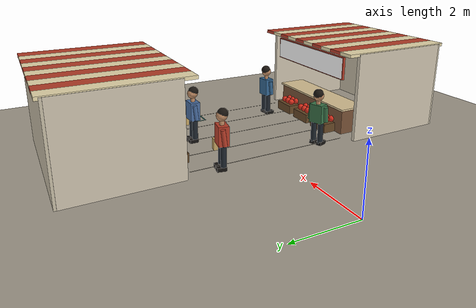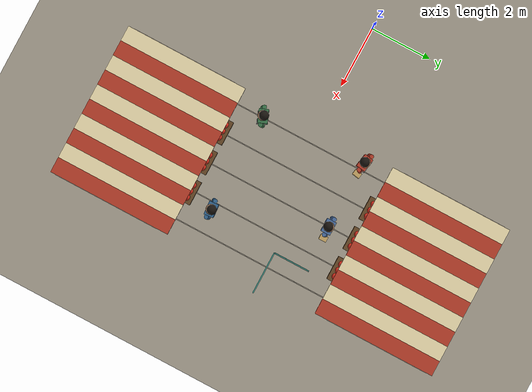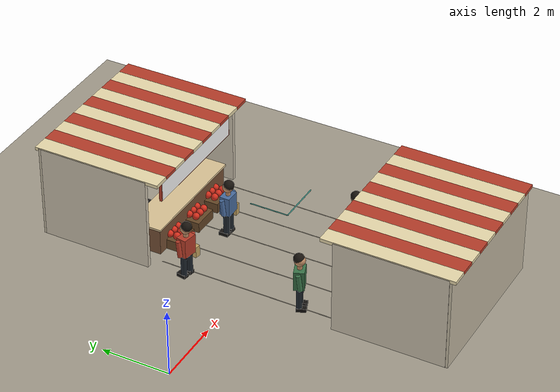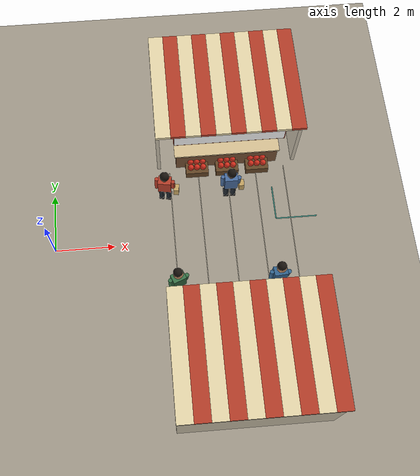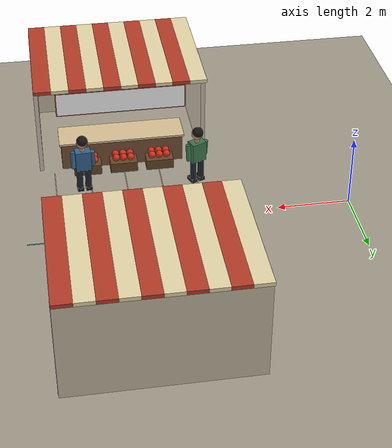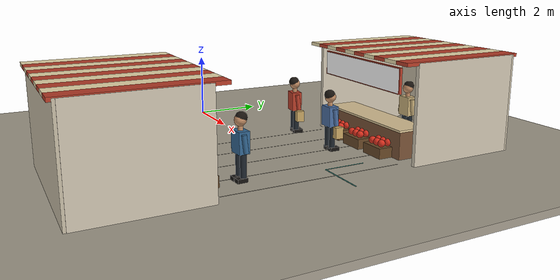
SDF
<sdf version="1.10">
 <world name="swan_market">
  <model name="ground">
   <static>true</static>
   <pose>15 0 -0.1 0 0 0</pose>
   <link name="body">
    <collision name="box_collision"><geometry><box><size>46 24 0.2</size></box></geometry></collision>
    <visual name="box_visual">
     <geometry><box><size>46 24 0.2</size></box></geometry>
     <material><ambient>0.64 0.61 0.55 1</ambient><diffuse>0.64 0.61 0.55 1</diffuse></material>
    </visual>
   </link>
  </model>
  <model name="paving_joint_4">
   <static>true</static>
   <pose>4 0 0.0045 0 0 0</pose>
   <link name="body">
    <visual name="box_visual">
     <geometry><box><size>0.025 5.2 0.001</size></box></geometry>
     <material><ambient>0.67 0.64 0.57 1</ambient><diffuse>0.67 0.64 0.57 1</diffuse></material>
    </visual>
   </link>
  </model>
  <model name="paving_joint_5">
   <static>true</static>
   <pose>5 0 0.0045 0 0 0</pose>
   <link name="body">
    <visual name="box_visual">
     <geometry><box><size>0.025 5.2 0.001</size></box></geometry>
     <material><ambient>0.67 0.64 0.57 1</ambient><diffuse>0.67 0.64 0.57 1</diffuse></material>
    </visual>
   </link>
  </model>
  <model name="paving_joint_6">
   <static>true</static>
   <pose>6 0 0.0045 0 0 0</pose>
   <link name="body">
    <visual name="box_visual">
     <geometry><box><size>0.025 5.2 0.001</size></box></geometry>
     <material><ambient>0.67 0.64 0.57 1</ambient><diffuse>0.67 0.64 0.57 1</diffuse></material>
    </visual>
   </link>
  </model>
  <model name="paving_joint_7">
   <static>true</static>
   <pose>7 0 0.0045 0 0 0</pose>
   <link name="body">
    <visual name="box_visual">
     <geometry><box><size>0.025 5.2 0.001</size></box></geometry>
     <material><ambient>0.67 0.64 0.57 1</ambient><diffuse>0.67 0.64 0.57 1</diffuse></material>
    </visual>
   </link>
  </model>
  <model name="paving_joint_8">
   <static>true</static>
   <pose>8 0 0.0045 0 0 0</pose>
   <link name="body">
    <visual name="box_visual">
     <geometry><box><size>0.025 5.2 0.001</size></box></geometry>
     <material><ambient>0.67 0.64 0.57 1</ambient><diffuse>0.67 0.64 0.57 1</diffuse></material>
    </visual>
   </link>
  </model>
  <model name="stall_00">
   <static>true</static>
   <pose>6 4.45 0 0 0 0</pose>
   <link name="body">
    <collision name="rear_collision">
     <pose>0 1.65 1.4 0 0 0</pose>
     <geometry><box><size>4.8 0.15 2.8</size></box></geometry>
    </collision>
    <visual name="rear_visual">
     <pose>0 1.65 1.4 0 0 0</pose>
     <geometry><box><size>4.8 0.15 2.8</size></box></geometry>
     <material><ambient>0.78 0.74 0.65 1</ambient><diffuse>0.78 0.74 0.65 1</diffuse></material>
    </visual>
    <collision name="side_-2.35_collision">
     <pose>-2.35 0 1.4 0 0 0</pose>
     <geometry><box><size>0.12 3.3 2.8</size></box></geometry>
    </collision>
    <visual name="side_-2.35_visual">
     <pose>-2.35 0 1.4 0 0 0</pose>
     <geometry><box><size>0.12 3.3 2.8</size></box></geometry>
     <material><ambient>0.81 0.77 0.69 1</ambient><diffuse>0.81 0.77 0.69 1</diffuse></material>
    </visual>
    <collision name="side_2.35_collision">
     <pose>2.35 0 1.4 0 0 0</pose>
     <geometry><box><size>0.12 3.3 2.8</size></box></geometry>
    </collision>
    <visual name="side_2.35_visual">
     <pose>2.35 0 1.4 0 0 0</pose>
     <geometry><box><size>0.12 3.3 2.8</size></box></geometry>
     <material><ambient>0.81 0.77 0.69 1</ambient><diffuse>0.81 0.77 0.69 1</diffuse></material>
    </visual>
    <collision name="counter_collision">
     <pose>0 -1.22 0.4 0 0 0</pose>
     <geometry><box><size>3.5 0.85 0.8</size></box></geometry>
    </collision>
    <visual name="counter_visual">
     <pose>0 -1.22 0.4 0 0 0</pose>
     <geometry><box><size>3.5 0.85 0.8</size></box></geometry>
     <material><ambient>0.47 0.32 0.21 1</ambient><diffuse>0.47 0.32 0.21 1</diffuse></material>
    </visual>
    <collision name="counter_top_collision">
     <pose>0 -1.22 0.83 0 0 0</pose>
     <geometry><box><size>3.6 0.95 0.06</size></box></geometry>
    </collision>
    <visual name="counter_top_visual">
     <pose>0 -1.22 0.83 0 0 0</pose>
     <geometry><box><size>3.6 0.95 0.06</size></box></geometry>
     <material><ambient>0.86 0.77 0.59 1</ambient><diffuse>0.86 0.77 0.59 1</diffuse></material>
    </visual>
    <collision name="awning_0_collision">
     <pose>-2.16 -0.1 2.78 0 0 0</pose>
     <geometry><box><size>0.48 3.85 0.1</size></box></geometry>
    </collision>
    <visual name="awning_0_visual">
     <pose>-2.16 -0.1 2.78 0 0 0</pose>
     <geometry><box><size>0.48 3.85 0.1</size></box></geometry>
     <material><ambient>0.92 0.86 0.68 1</ambient><diffuse>0.92 0.86 0.68 1</diffuse></material>
    </visual>
    <collision name="awning_1_collision">
     <pose>-1.68 -0.1 2.78 0 0 0</pose>
     <geometry><box><size>0.48 3.85 0.1</size></box></geometry>
    </collision>
    <visual name="awning_1_visual">
     <pose>-1.68 -0.1 2.78 0 0 0</pose>
     <geometry><box><size>0.48 3.85 0.1</size></box></geometry>
     <material><ambient>0.72 0.24 0.16 1</ambient><diffuse>0.72 0.24 0.16 1</diffuse></material>
    </visual>
    <collision name="awning_2_collision">
     <pose>-1.2 -0.1 2.78 0 0 0</pose>
     <geometry><box><size>0.48 3.85 0.1</size></box></geometry>
    </collision>
    <visual name="awning_2_visual">
     <pose>-1.2 -0.1 2.78 0 0 0</pose>
     <geometry><box><size>0.48 3.85 0.1</size></box></geometry>
     <material><ambient>0.92 0.86 0.68 1</ambient><diffuse>0.92 0.86 0.68 1</diffuse></material>
    </visual>
    <collision name="awning_3_collision">
     <pose>-0.72 -0.1 2.78 0 0 0</pose>
     <geometry><box><size>0.48 3.85 0.1</size></box></geometry>
    </collision>
    <visual name="awning_3_visual">
     <pose>-0.72 -0.1 2.78 0 0 0</pose>
     <geometry><box><size>0.48 3.85 0.1</size></box></geometry>
     <material><ambient>0.72 0.24 0.16 1</ambient><diffuse>0.72 0.24 0.16 1</diffuse></material>
    </visual>
    <collision name="awning_4_collision">
     <pose>-0.24 -0.1 2.78 0 0 0</pose>
     <geometry><box><size>0.48 3.85 0.1</size></box></geometry>
    </collision>
    <visual name="awning_4_visual">
     <pose>-0.24 -0.1 2.78 0 0 0</pose>
     <geometry><box><size>0.48 3.85 0.1</size></box></geometry>
     <material><ambient>0.92 0.86 0.68 1</ambient><diffuse>0.92 0.86 0.68 1</diffuse></material>
    </visual>
    <collision name="awning_5_collision">
     <pose>0.24 -0.1 2.78 0 0 0</pose>
     <geometry><box><size>0.48 3.85 0.1</size></box></geometry>
    </collision>
    <visual name="awning_5_visual">
     <pose>0.24 -0.1 2.78 0 0 0</pose>
     <geometry><box><size>0.48 3.85 0.1</size></box></geometry>
     <material><ambient>0.72 0.24 0.16 1</ambient><diffuse>0.72 0.24 0.16 1</diffuse></material>
    </visual>
    <collision name="awning_6_collision">
     <pose>0.72 -0.1 2.78 0 0 0</pose>
     <geometry><box><size>0.48 3.85 0.1</size></box></geometry>
    </collision>
    <visual name="awning_6_visual">
     <pose>0.72 -0.1 2.78 0 0 0</pose>
     <geometry><box><size>0.48 3.85 0.1</size></box></geometry>
     <material><ambient>0.92 0.86 0.68 1</ambient><diffuse>0.92 0.86 0.68 1</diffuse></material>
    </visual>
    <collision name="awning_7_collision">
     <pose>1.2 -0.1 2.78 0 0 0</pose>
     <geometry><box><size>0.48 3.85 0.1</size></box></geometry>
    </collision>
    <visual name="awning_7_visual">
     <pose>1.2 -0.1 2.78 0 0 0</pose>
     <geometry><box><size>0.48 3.85 0.1</size></box></geometry>
     <material><ambient>0.72 0.24 0.16 1</ambient><diffuse>0.72 0.24 0.16 1</diffuse></material>
    </visual>
    <collision name="awning_8_collision">
     <pose>1.68 -0.1 2.78 0 0 0</pose>
     <geometry><box><size>0.48 3.85 0.1</size></box></geometry>
    </collision>
    <visual name="awning_8_visual">
     <pose>1.68 -0.1 2.78 0 0 0</pose>
     <geometry><box><size>0.48 3.85 0.1</size></box></geometry>
     <material><ambient>0.92 0.86 0.68 1</ambient><diffuse>0.92 0.86 0.68 1</diffuse></material>
    </visual>
    <collision name="awning_9_collision">
     <pose>2.16 -0.1 2.78 0 0 0</pose>
     <geometry><box><size>0.48 3.85 0.1</size></box></geometry>
    </collision>
    <visual name="awning_9_visual">
     <pose>2.16 -0.1 2.78 0 0 0</pose>
     <geometry><box><size>0.48 3.85 0.1</size></box></geometry>
     <material><ambient>0.72 0.24 0.16 1</ambient><diffuse>0.72 0.24 0.16 1</diffuse></material>
    </visual>
    <collision name="crate_-1_collision">
     <pose>-1.04 -1.77 0.15 0 0 0</pose>
     <geometry><box><size>0.78 0.6 0.3</size></box></geometry>
    </collision>
    <visual name="crate_-1_visual">
     <pose>-1.04 -1.77 0.15 0 0 0</pose>
     <geometry><box><size>0.78 0.6 0.3</size></box></geometry>
     <material><ambient>0.4 0.28 0.15 1</ambient><diffuse>0.4 0.28 0.15 1</diffuse></material>
    </visual>
    <visual name="produce_-1_0_visual">
     <pose>-1.25 -1.88 0.39 0 0 0</pose>
     <geometry><sphere><radius>0.105</radius></sphere></geometry>
     <material><ambient>0.84 0.18 0.11 1</ambient><diffuse>0.84 0.18 0.11 1</diffuse></material>
    </visual>
    <visual name="produce_-1_1_visual">
     <pose>-1.04 -1.88 0.39 0 0 0</pose>
     <geometry><sphere><radius>0.105</radius></sphere></geometry>
     <material><ambient>0.84 0.18 0.11 1</ambient><diffuse>0.84 0.18 0.11 1</diffuse></material>
    </visual>
    <visual name="produce_-1_2_visual">
     <pose>-0.83 -1.88 0.39 0 0 0</pose>
     <geometry><sphere><radius>0.105</radius></sphere></geometry>
     <material><ambient>0.84 0.18 0.11 1</ambient><diffuse>0.84 0.18 0.11 1</diffuse></material>
    </visual>
    <visual name="produce_-1_3_visual">
     <pose>-1.25 -1.66 0.39 0 0 0</pose>
     <geometry><sphere><radius>0.105</radius></sphere></geometry>
     <material><ambient>0.84 0.18 0.11 1</ambient><diffuse>0.84 0.18 0.11 1</diffuse></material>
    </visual>
    <visual name="produce_-1_4_visual">
     <pose>-1.04 -1.66 0.39 0 0 0</pose>
     <geometry><sphere><radius>0.105</radius></sphere></geometry>
     <material><ambient>0.84 0.18 0.11 1</ambient><diffuse>0.84 0.18 0.11 1</diffuse></material>
    </visual>
    <visual name="produce_-1_5_visual">
     <pose>-0.83 -1.66 0.39 0 0 0</pose>
     <geometry><sphere><radius>0.105</radius></sphere></geometry>
     <material><ambient>0.84 0.18 0.11 1</ambient><diffuse>0.84 0.18 0.11 1</diffuse></material>
    </visual>
    <collision name="crate_0_collision">
     <pose>0 -1.77 0.15 0 0 0</pose>
     <geometry><box><size>0.78 0.6 0.3</size></box></geometry>
    </collision>
    <visual name="crate_0_visual">
     <pose>0 -1.77 0.15 0 0 0</pose>
     <geometry><box><size>0.78 0.6 0.3</size></box></geometry>
     <material><ambient>0.4 0.28 0.15 1</ambient><diffuse>0.4 0.28 0.15 1</diffuse></material>
    </visual>
    <visual name="produce_0_0_visual">
     <pose>-0.21 -1.88 0.39 0 0 0</pose>
     <geometry><sphere><radius>0.105</radius></sphere></geometry>
     <material><ambient>0.84 0.18 0.11 1</ambient><diffuse>0.84 0.18 0.11 1</diffuse></material>
    </visual>
    <visual name="produce_0_1_visual">
     <pose>0 -1.88 0.39 0 0 0</pose>
     <geometry><sphere><radius>0.105</radius></sphere></geometry>
     <material><ambient>0.84 0.18 0.11 1</ambient><diffuse>0.84 0.18 0.11 1</diffuse></material>
    </visual>
    <visual name="produce_0_2_visual">
     <pose>0.21 -1.88 0.39 0 0 0</pose>
     <geometry><sphere><radius>0.105</radius></sphere></geometry>
     <material><ambient>0.84 0.18 0.11 1</ambient><diffuse>0.84 0.18 0.11 1</diffuse></material>
    </visual>
    <visual name="produce_0_3_visual">
     <pose>-0.21 -1.66 0.39 0 0 0</pose>
     <geometry><sphere><radius>0.105</radius></sphere></geometry>
     <material><ambient>0.84 0.18 0.11 1</ambient><diffuse>0.84 0.18 0.11 1</diffuse></material>
    </visual>
    <visual name="produce_0_4_visual">
     <pose>0 -1.66 0.39 0 0 0</pose>
     <geometry><sphere><radius>0.105</radius></sphere></geometry>
     <material><ambient>0.84 0.18 0.11 1</ambient><diffuse>0.84 0.18 0.11 1</diffuse></material>
    </visual>
    <visual name="produce_0_5_visual">
     <pose>0.21 -1.66 0.39 0 0 0</pose>
     <geometry><sphere><radius>0.105</radius></sphere></geometry>
     <material><ambient>0.84 0.18 0.11 1</ambient><diffuse>0.84 0.18 0.11 1</diffuse></material>
    </visual>
    <collision name="crate_1_collision">
     <pose>1.04 -1.77 0.15 0 0 0</pose>
     <geometry><box><size>0.78 0.6 0.3</size></box></geometry>
    </collision>
    <visual name="crate_1_visual">
     <pose>1.04 -1.77 0.15 0 0 0</pose>
     <geometry><box><size>0.78 0.6 0.3</size></box></geometry>
     <material><ambient>0.4 0.28 0.15 1</ambient><diffuse>0.4 0.28 0.15 1</diffuse></material>
    </visual>
    <visual name="produce_1_0_visual">
     <pose>0.83 -1.88 0.39 0 0 0</pose>
     <geometry><sphere><radius>0.105</radius></sphere></geometry>
     <material><ambient>0.84 0.18 0.11 1</ambient><diffuse>0.84 0.18 0.11 1</diffuse></material>
    </visual>
    <visual name="produce_1_1_visual">
     <pose>1.04 -1.88 0.39 0 0 0</pose>
     <geometry><sphere><radius>0.105</radius></sphere></geometry>
     <material><ambient>0.84 0.18 0.11 1</ambient><diffuse>0.84 0.18 0.11 1</diffuse></material>
    </visual>
    <visual name="produce_1_2_visual">
     <pose>1.25 -1.88 0.39 0 0 0</pose>
     <geometry><sphere><radius>0.105</radius></sphere></geometry>
     <material><ambient>0.84 0.18 0.11 1</ambient><diffuse>0.84 0.18 0.11 1</diffuse></material>
    </visual>
    <visual name="produce_1_3_visual">
     <pose>0.83 -1.66 0.39 0 0 0</pose>
     <geometry><sphere><radius>0.105</radius></sphere></geometry>
     <material><ambient>0.84 0.18 0.11 1</ambient><diffuse>0.84 0.18 0.11 1</diffuse></material>
    </visual>
    <visual name="produce_1_4_visual">
     <pose>1.04 -1.66 0.39 0 0 0</pose>
     <geometry><sphere><radius>0.105</radius></sphere></geometry>
     <material><ambient>0.84 0.18 0.11 1</ambient><diffuse>0.84 0.18 0.11 1</diffuse></material>
    </visual>
    <visual name="produce_1_5_visual">
     <pose>1.25 -1.66 0.39 0 0 0</pose>
     <geometry><sphere><radius>0.105</radius></sphere></geometry>
     <material><ambient>0.84 0.18 0.11 1</ambient><diffuse>0.84 0.18 0.11 1</diffuse></material>
    </visual>
   </link>
  </model>
  <model name="signboard_0">
   <static>true</static>
   <pose>6 2.69 2.24 0 0 0</pose>
   <link name="body">
    <collision name="box_collision"><geometry><box><size>3.65 0.08 0.72</size></box></geometry></collision>
    <visual name="box_visual">
     <geometry><box><size>3.65 0.08 0.72</size></box></geometry>
     <material><ambient>0.72 0.24 0.16 1</ambient><diffuse>0.72 0.24 0.16 1</diffuse></material>
    </visual>
   </link>
  </model>
  <model name="sign_shop_0">
   <static>true</static>
   <pose>6 2.642 2.24 0 0 0</pose>
   <link name="body">
    <visual name="lettering">
     <geometry>
      <mesh><uri>model://swan_market_assets/meshes/shop_0.dae</uri><scale>3.6 1 0.675</scale></mesh>
     </geometry>
     <material>
      <ambient>1 1 1 1</ambient>
      <diffuse>1 1 1 1</diffuse>
      <emissive>0 0 0 1</emissive>
      <pbr>
       <metal>
        <albedo_map>model://swan_market_assets/materials/textures/shop_0.png</albedo_map>
        <metalness>0</metalness>
        <roughness>1</roughness>
       </metal>
      </pbr>
     </material>
    </visual>
   </link>
  </model>
  <model name="stall_04">
   <static>true</static>
   <pose>6 -4.45 0 0 0 0</pose>
   <link name="body">
    <collision name="rear_collision">
     <pose>0 -1.65 1.4 0 0 0</pose>
     <geometry><box><size>4.8 0.15 2.8</size></box></geometry>
    </collision>
    <visual name="rear_visual">
     <pose>0 -1.65 1.4 0 0 0</pose>
     <geometry><box><size>4.8 0.15 2.8</size></box></geometry>
     <material><ambient>0.78 0.74 0.65 1</ambient><diffuse>0.78 0.74 0.65 1</diffuse></material>
    </visual>
    <collision name="side_-2.35_collision">
     <pose>-2.35 0 1.4 0 0 0</pose>
     <geometry><box><size>0.12 3.3 2.8</size></box></geometry>
    </collision>
    <visual name="side_-2.35_visual">
     <pose>-2.35 0 1.4 0 0 0</pose>
     <geometry><box><size>0.12 3.3 2.8</size></box></geometry>
     <material><ambient>0.81 0.77 0.69 1</ambient><diffuse>0.81 0.77 0.69 1</diffuse></material>
    </visual>
    <collision name="side_2.35_collision">
     <pose>2.35 0 1.4 0 0 0</pose>
     <geometry><box><size>0.12 3.3 2.8</size></box></geometry>
    </collision>
    <visual name="side_2.35_visual">
     <pose>2.35 0 1.4 0 0 0</pose>
     <geometry><box><size>0.12 3.3 2.8</size></box></geometry>
     <material><ambient>0.81 0.77 0.69 1</ambient><diffuse>0.81 0.77 0.69 1</diffuse></material>
    </visual>
    <collision name="counter_collision">
     <pose>0 1.22 0.4 0 0 0</pose>
     <geometry><box><size>3.5 0.85 0.8</size></box></geometry>
    </collision>
    <visual name="counter_visual">
     <pose>0 1.22 0.4 0 0 0</pose>
     <geometry><box><size>3.5 0.85 0.8</size></box></geometry>
     <material><ambient>0.47 0.32 0.21 1</ambient><diffuse>0.47 0.32 0.21 1</diffuse></material>
    </visual>
    <collision name="counter_top_collision">
     <pose>0 1.22 0.83 0 0 0</pose>
     <geometry><box><size>3.6 0.95 0.06</size></box></geometry>
    </collision>
    <visual name="counter_top_visual">
     <pose>0 1.22 0.83 0 0 0</pose>
     <geometry><box><size>3.6 0.95 0.06</size></box></geometry>
     <material><ambient>0.86 0.77 0.59 1</ambient><diffuse>0.86 0.77 0.59 1</diffuse></material>
    </visual>
    <collision name="awning_0_collision">
     <pose>-2.16 0.1 2.78 0 0 0</pose>
     <geometry><box><size>0.48 3.85 0.1</size></box></geometry>
    </collision>
    <visual name="awning_0_visual">
     <pose>-2.16 0.1 2.78 0 0 0</pose>
     <geometry><box><size>0.48 3.85 0.1</size></box></geometry>
     <material><ambient>0.92 0.86 0.68 1</ambient><diffuse>0.92 0.86 0.68 1</diffuse></material>
    </visual>
    <collision name="awning_1_collision">
     <pose>-1.68 0.1 2.78 0 0 0</pose>
     <geometry><box><size>0.48 3.85 0.1</size></box></geometry>
    </collision>
    <visual name="awning_1_visual">
     <pose>-1.68 0.1 2.78 0 0 0</pose>
     <geometry><box><size>0.48 3.85 0.1</size></box></geometry>
     <material><ambient>0.72 0.24 0.16 1</ambient><diffuse>0.72 0.24 0.16 1</diffuse></material>
    </visual>
    <collision name="awning_2_collision">
     <pose>-1.2 0.1 2.78 0 0 0</pose>
     <geometry><box><size>0.48 3.85 0.1</size></box></geometry>
    </collision>
    <visual name="awning_2_visual">
     <pose>-1.2 0.1 2.78 0 0 0</pose>
     <geometry><box><size>0.48 3.85 0.1</size></box></geometry>
     <material><ambient>0.92 0.86 0.68 1</ambient><diffuse>0.92 0.86 0.68 1</diffuse></material>
    </visual>
    <collision name="awning_3_collision">
     <pose>-0.72 0.1 2.78 0 0 0</pose>
     <geometry><box><size>0.48 3.85 0.1</size></box></geometry>
    </collision>
    <visual name="awning_3_visual">
     <pose>-0.72 0.1 2.78 0 0 0</pose>
     <geometry><box><size>0.48 3.85 0.1</size></box></geometry>
     <material><ambient>0.72 0.24 0.16 1</ambient><diffuse>0.72 0.24 0.16 1</diffuse></material>
    </visual>
    <collision name="awning_4_collision">
     <pose>-0.24 0.1 2.78 0 0 0</pose>
     <geometry><box><size>0.48 3.85 0.1</size></box></geometry>
    </collision>
    <visual name="awning_4_visual">
     <pose>-0.24 0.1 2.78 0 0 0</pose>
     <geometry><box><size>0.48 3.85 0.1</size></box></geometry>
     <material><ambient>0.92 0.86 0.68 1</ambient><diffuse>0.92 0.86 0.68 1</diffuse></material>
    </visual>
    <collision name="awning_5_collision">
     <pose>0.24 0.1 2.78 0 0 0</pose>
     <geometry><box><size>0.48 3.85 0.1</size></box></geometry>
    </collision>
    <visual name="awning_5_visual">
     <pose>0.24 0.1 2.78 0 0 0</pose>
     <geometry><box><size>0.48 3.85 0.1</size></box></geometry>
     <material><ambient>0.72 0.24 0.16 1</ambient><diffuse>0.72 0.24 0.16 1</diffuse></material>
    </visual>
    <collision name="awning_6_collision">
     <pose>0.72 0.1 2.78 0 0 0</pose>
     <geometry><box><size>0.48 3.85 0.1</size></box></geometry>
    </collision>
    <visual name="awning_6_visual">
     <pose>0.72 0.1 2.78 0 0 0</pose>
     <geometry><box><size>0.48 3.85 0.1</size></box></geometry>
     <material><ambient>0.92 0.86 0.68 1</ambient><diffuse>0.92 0.86 0.68 1</diffuse></material>
    </visual>
    <collision name="awning_7_collision">
     <pose>1.2 0.1 2.78 0 0 0</pose>
     <geometry><box><size>0.48 3.85 0.1</size></box></geometry>
    </collision>
    <visual name="awning_7_visual">
     <pose>1.2 0.1 2.78 0 0 0</pose>
     <geometry><box><size>0.48 3.85 0.1</size></box></geometry>
     <material><ambient>0.72 0.24 0.16 1</ambient><diffuse>0.72 0.24 0.16 1</diffuse></material>
    </visual>
    <collision name="awning_8_collision">
     <pose>1.68 0.1 2.78 0 0 0</pose>
     <geometry><box><size>0.48 3.85 0.1</size></box></geometry>
    </collision>
    <visual name="awning_8_visual">
     <pose>1.68 0.1 2.78 0 0 0</pose>
     <geometry><box><size>0.48 3.85 0.1</size></box></geometry>
     <material><ambient>0.92 0.86 0.68 1</ambient><diffuse>0.92 0.86 0.68 1</diffuse></material>
    </visual>
    <collision name="awning_9_collision">
     <pose>2.16 0.1 2.78 0 0 0</pose>
     <geometry><box><size>0.48 3.85 0.1</size></box></geometry>
    </collision>
    <visual name="awning_9_visual">
     <pose>2.16 0.1 2.78 0 0 0</pose>
     <geometry><box><size>0.48 3.85 0.1</size></box></geometry>
     <material><ambient>0.72 0.24 0.16 1</ambient><diffuse>0.72 0.24 0.16 1</diffuse></material>
    </visual>
    <collision name="crate_-1_collision">
     <pose>-1.04 1.77 0.15 0 0 0</pose>
     <geometry><box><size>0.78 0.6 0.3</size></box></geometry>
    </collision>
    <visual name="crate_-1_visual">
     <pose>-1.04 1.77 0.15 0 0 0</pose>
     <geometry><box><size>0.78 0.6 0.3</size></box></geometry>
     <material><ambient>0.4 0.28 0.15 1</ambient><diffuse>0.4 0.28 0.15 1</diffuse></material>
    </visual>
    <visual name="produce_-1_0_visual">
     <pose>-1.25 1.66 0.39 0 0 0</pose>
     <geometry><sphere><radius>0.105</radius></sphere></geometry>
     <material><ambient>0.84 0.18 0.11 1</ambient><diffuse>0.84 0.18 0.11 1</diffuse></material>
    </visual>
    <visual name="produce_-1_1_visual">
     <pose>-1.04 1.66 0.39 0 0 0</pose>
     <geometry><sphere><radius>0.105</radius></sphere></geometry>
     <material><ambient>0.84 0.18 0.11 1</ambient><diffuse>0.84 0.18 0.11 1</diffuse></material>
    </visual>
    <visual name="produce_-1_2_visual">
     <pose>-0.83 1.66 0.39 0 0 0</pose>
     <geometry><sphere><radius>0.105</radius></sphere></geometry>
     <material><ambient>0.84 0.18 0.11 1</ambient><diffuse>0.84 0.18 0.11 1</diffuse></material>
    </visual>
    <visual name="produce_-1_3_visual">
     <pose>-1.25 1.88 0.39 0 0 0</pose>
     <geometry><sphere><radius>0.105</radius></sphere></geometry>
     <material><ambient>0.84 0.18 0.11 1</ambient><diffuse>0.84 0.18 0.11 1</diffuse></material>
    </visual>
    <visual name="produce_-1_4_visual">
     <pose>-1.04 1.88 0.39 0 0 0</pose>
     <geometry><sphere><radius>0.105</radius></sphere></geometry>
     <material><ambient>0.84 0.18 0.11 1</ambient><diffuse>0.84 0.18 0.11 1</diffuse></material>
    </visual>
    <visual name="produce_-1_5_visual">
     <pose>-0.83 1.88 0.39 0 0 0</pose>
     <geometry><sphere><radius>0.105</radius></sphere></geometry>
     <material><ambient>0.84 0.18 0.11 1</ambient><diffuse>0.84 0.18 0.11 1</diffuse></material>
    </visual>
    <collision name="crate_0_collision">
     <pose>0 1.77 0.15 0 0 0</pose>
     <geometry><box><size>0.78 0.6 0.3</size></box></geometry>
    </collision>
    <visual name="crate_0_visual">
     <pose>0 1.77 0.15 0 0 0</pose>
     <geometry><box><size>0.78 0.6 0.3</size></box></geometry>
     <material><ambient>0.4 0.28 0.15 1</ambient><diffuse>0.4 0.28 0.15 1</diffuse></material>
    </visual>
    <visual name="produce_0_0_visual">
     <pose>-0.21 1.66 0.39 0 0 0</pose>
     <geometry><sphere><radius>0.105</radius></sphere></geometry>
     <material><ambient>0.84 0.18 0.11 1</ambient><diffuse>0.84 0.18 0.11 1</diffuse></material>
    </visual>
    <visual name="produce_0_1_visual">
     <pose>0 1.66 0.39 0 0 0</pose>
     <geometry><sphere><radius>0.105</radius></sphere></geometry>
     <material><ambient>0.84 0.18 0.11 1</ambient><diffuse>0.84 0.18 0.11 1</diffuse></material>
    </visual>
    <visual name="produce_0_2_visual">
     <pose>0.21 1.66 0.39 0 0 0</pose>
     <geometry><sphere><radius>0.105</radius></sphere></geometry>
     <material><ambient>0.84 0.18 0.11 1</ambient><diffuse>0.84 0.18 0.11 1</diffuse></material>
    </visual>
    <visual name="produce_0_3_visual">
     <pose>-0.21 1.88 0.39 0 0 0</pose>
     <geometry><sphere><radius>0.105</radius></sphere></geometry>
     <material><ambient>0.84 0.18 0.11 1</ambient><diffuse>0.84 0.18 0.11 1</diffuse></material>
    </visual>
    <visual name="produce_0_4_visual">
     <pose>0 1.88 0.39 0 0 0</pose>
     <geometry><sphere><radius>0.105</radius></sphere></geometry>
     <material><ambient>0.84 0.18 0.11 1</ambient><diffuse>0.84 0.18 0.11 1</diffuse></material>
    </visual>
    <visual name="produce_0_5_visual">
     <pose>0.21 1.88 0.39 0 0 0</pose>
     <geometry><sphere><radius>0.105</radius></sphere></geometry>
     <material><ambient>0.84 0.18 0.11 1</ambient><diffuse>0.84 0.18 0.11 1</diffuse></material>
    </visual>
    <collision name="crate_1_collision">
     <pose>1.04 1.77 0.15 0 0 0</pose>
     <geometry><box><size>0.78 0.6 0.3</size></box></geometry>
    </collision>
    <visual name="crate_1_visual">
     <pose>1.04 1.77 0.15 0 0 0</pose>
     <geometry><box><size>0.78 0.6 0.3</size></box></geometry>
     <material><ambient>0.4 0.28 0.15 1</ambient><diffuse>0.4 0.28 0.15 1</diffuse></material>
    </visual>
    <visual name="produce_1_0_visual">
     <pose>0.83 1.66 0.39 0 0 0</pose>
     <geometry><sphere><radius>0.105</radius></sphere></geometry>
     <material><ambient>0.84 0.18 0.11 1</ambient><diffuse>0.84 0.18 0.11 1</diffuse></material>
    </visual>
    <visual name="produce_1_1_visual">
     <pose>1.04 1.66 0.39 0 0 0</pose>
     <geometry><sphere><radius>0.105</radius></sphere></geometry>
     <material><ambient>0.84 0.18 0.11 1</ambient><diffuse>0.84 0.18 0.11 1</diffuse></material>
    </visual>
    <visual name="produce_1_2_visual">
     <pose>1.25 1.66 0.39 0 0 0</pose>
     <geometry><sphere><radius>0.105</radius></sphere></geometry>
     <material><ambient>0.84 0.18 0.11 1</ambient><diffuse>0.84 0.18 0.11 1</diffuse></material>
    </visual>
    <visual name="produce_1_3_visual">
     <pose>0.83 1.88 0.39 0 0 0</pose>
     <geometry><sphere><radius>0.105</radius></sphere></geometry>
     <material><ambient>0.84 0.18 0.11 1</ambient><diffuse>0.84 0.18 0.11 1</diffuse></material>
    </visual>
    <visual name="produce_1_4_visual">
     <pose>1.04 1.88 0.39 0 0 0</pose>
     <geometry><sphere><radius>0.105</radius></sphere></geometry>
     <material><ambient>0.84 0.18 0.11 1</ambient><diffuse>0.84 0.18 0.11 1</diffuse></material>
    </visual>
    <visual name="produce_1_5_visual">
     <pose>1.25 1.88 0.39 0 0 0</pose>
     <geometry><sphere><radius>0.105</radius></sphere></geometry>
     <material><ambient>0.84 0.18 0.11 1</ambient><diffuse>0.84 0.18 0.11 1</diffuse></material>
    </visual>
   </link>
  </model>
  <model name="signboard_4">
   <static>true</static>
   <pose>6 -2.69 2.24 0 0 0</pose>
   <link name="body">
    <collision name="box_collision"><geometry><box><size>3.65 0.08 0.72</size></box></geometry></collision>
    <visual name="box_visual">
     <geometry><box><size>3.65 0.08 0.72</size></box></geometry>
     <material><ambient>0.72 0.24 0.16 1</ambient><diffuse>0.72 0.24 0.16 1</diffuse></material>
    </visual>
   </link>
  </model>
  <model name="sign_shop_4">
   <static>true</static>
   <pose>6 -2.642 2.24 0 0 3.1416</pose>
   <link name="body">
    <visual name="lettering">
     <geometry>
      <mesh><uri>model://swan_market_assets/meshes/shop_4.dae</uri><scale>3.6 1 0.675</scale></mesh>
     </geometry>
     <material>
      <ambient>1 1 1 1</ambient>
      <diffuse>1 1 1 1</diffuse>
      <emissive>0 0 0 1</emissive>
      <pbr>
       <metal>
        <albedo_map>model://swan_market_assets/materials/textures/shop_4.png</albedo_map>
        <metalness>0</metalness>
        <roughness>1</roughness>
       </metal>
      </pbr>
     </material>
    </visual>
   </link>
  </model>
  <model name="shopper_fruit">
   <static>true</static>
   <pose>6 1.65 0 0 0 1.5708</pose>
   <link name="body">
    <collision name="leg_-1_collision">
     <pose>0 -0.12 0.4 0 0 0</pose>
     <geometry><cylinder><radius>0.085</radius><length>0.68</length></cylinder></geometry>
    </collision>
    <visual name="leg_-1_visual">
     <pose>0 -0.12 0.4 0 0 0</pose>
     <geometry><cylinder><radius>0.085</radius><length>0.68</length></cylinder></geometry>
     <material><ambient>0.12 0.15 0.18 1</ambient><diffuse>0.12 0.15 0.18 1</diffuse></material>
    </visual>
    <collision name="shoe_-1_collision">
     <pose>0.06 -0.12 0.055 0 0 0</pose>
     <geometry><box><size>0.28 0.17 0.11</size></box></geometry>
    </collision>
    <visual name="shoe_-1_visual">
     <pose>0.06 -0.12 0.055 0 0 0</pose>
     <geometry><box><size>0.28 0.17 0.11</size></box></geometry>
     <material><ambient>0.08 0.07 0.06 1</ambient><diffuse>0.08 0.07 0.06 1</diffuse></material>
    </visual>
    <collision name="arm_-1_collision">
     <pose>0.02 -0.27 1.02 0 -0.12 0</pose>
     <geometry><cylinder><radius>0.068</radius><length>0.48</length></cylinder></geometry>
    </collision>
    <visual name="arm_-1_visual">
     <pose>0.02 -0.27 1.02 0 -0.12 0</pose>
     <geometry><cylinder><radius>0.068</radius><length>0.48</length></cylinder></geometry>
     <material><ambient>0.29 0.43 0.63 1</ambient><diffuse>0.29 0.43 0.63 1</diffuse></material>
    </visual>
    <collision name="leg_1_collision">
     <pose>0 0.12 0.4 0 0 0</pose>
     <geometry><cylinder><radius>0.085</radius><length>0.68</length></cylinder></geometry>
    </collision>
    <visual name="leg_1_visual">
     <pose>0 0.12 0.4 0 0 0</pose>
     <geometry><cylinder><radius>0.085</radius><length>0.68</length></cylinder></geometry>
     <material><ambient>0.12 0.15 0.18 1</ambient><diffuse>0.12 0.15 0.18 1</diffuse></material>
    </visual>
    <collision name="shoe_1_collision">
     <pose>0.06 0.12 0.055 0 0 0</pose>
     <geometry><box><size>0.28 0.17 0.11</size></box></geometry>
    </collision>
    <visual name="shoe_1_visual">
     <pose>0.06 0.12 0.055 0 0 0</pose>
     <geometry><box><size>0.28 0.17 0.11</size></box></geometry>
     <material><ambient>0.08 0.07 0.06 1</ambient><diffuse>0.08 0.07 0.06 1</diffuse></material>
    </visual>
    <collision name="arm_1_collision">
     <pose>0.02 0.27 1.02 0 0.12 0</pose>
     <geometry><cylinder><radius>0.068</radius><length>0.48</length></cylinder></geometry>
    </collision>
    <visual name="arm_1_visual">
     <pose>0.02 0.27 1.02 0 0.12 0</pose>
     <geometry><cylinder><radius>0.068</radius><length>0.48</length></cylinder></geometry>
     <material><ambient>0.29 0.43 0.63 1</ambient><diffuse>0.29 0.43 0.63 1</diffuse></material>
    </visual>
    <collision name="torso_collision">
     <pose>0 0 1.02 0 0 0</pose>
     <geometry><box><size>0.3 0.43 0.58</size></box></geometry>
    </collision>
    <visual name="torso_visual">
     <pose>0 0 1.02 0 0 0</pose>
     <geometry><box><size>0.3 0.43 0.58</size></box></geometry>
     <material><ambient>0.29 0.43 0.63 1</ambient><diffuse>0.29 0.43 0.63 1</diffuse></material>
    </visual>
    <visual name="neck_visual">
     <pose>0 0 1.37 0 0 0</pose>
     <geometry><cylinder><radius>0.07</radius><length>0.13</length></cylinder></geometry>
     <material><ambient>0.77 0.56 0.4 1</ambient><diffuse>0.77 0.56 0.4 1</diffuse></material>
    </visual>
    <collision name="head_collision">
     <pose>0 0 1.57 0 0 0</pose>
     <geometry><sphere><radius>0.16</radius></sphere></geometry>
    </collision>
    <visual name="head_visual">
     <pose>0 0 1.57 0 0 0</pose>
     <geometry><sphere><radius>0.16</radius></sphere></geometry>
     <material><ambient>0.77 0.56 0.4 1</ambient><diffuse>0.77 0.56 0.4 1</diffuse></material>
    </visual>
    <visual name="hair_visual">
     <pose>-0.025 0 1.63 0 0 0</pose>
     <geometry><sphere><radius>0.155</radius></sphere></geometry>
     <material><ambient>0.1 0.08 0.06 1</ambient><diffuse>0.1 0.08 0.06 1</diffuse></material>
    </visual>
    <collision name="shopping_bag_collision">
     <pose>0.04 -0.38 0.6 0 0 0</pose>
     <geometry><box><size>0.24 0.17 0.33</size></box></geometry>
    </collision>
    <visual name="shopping_bag_visual">
     <pose>0.04 -0.38 0.6 0 0 0</pose>
     <geometry><box><size>0.24 0.17 0.33</size></box></geometry>
     <material><ambient>0.78 0.65 0.39 1</ambient><diffuse>0.78 0.65 0.39 1</diffuse></material>
    </visual>
   </link>
  </model>
  <model name="vendor_0">
   <static>true</static>
   <pose>6 4.45 0 0 0 -1.5708</pose>
   <link name="body">
    <collision name="leg_-1_collision">
     <pose>0 -0.12 0.4 0 0 0</pose>
     <geometry><cylinder><radius>0.085</radius><length>0.68</length></cylinder></geometry>
    </collision>
    <visual name="leg_-1_visual">
     <pose>0 -0.12 0.4 0 0 0</pose>
     <geometry><cylinder><radius>0.085</radius><length>0.68</length></cylinder></geometry>
     <material><ambient>0.12 0.15 0.18 1</ambient><diffuse>0.12 0.15 0.18 1</diffuse></material>
    </visual>
    <collision name="shoe_-1_collision">
     <pose>0.06 -0.12 0.055 0 0 0</pose>
     <geometry><box><size>0.28 0.17 0.11</size></box></geometry>
    </collision>
    <visual name="shoe_-1_visual">
     <pose>0.06 -0.12 0.055 0 0 0</pose>
     <geometry><box><size>0.28 0.17 0.11</size></box></geometry>
     <material><ambient>0.08 0.07 0.06 1</ambient><diffuse>0.08 0.07 0.06 1</diffuse></material>
    </visual>
    <collision name="arm_-1_collision">
     <pose>0.02 -0.27 1.02 0 -0.12 0</pose>
     <geometry><cylinder><radius>0.068</radius><length>0.48</length></cylinder></geometry>
    </collision>
    <visual name="arm_-1_visual">
     <pose>0.02 -0.27 1.02 0 -0.12 0</pose>
     <geometry><cylinder><radius>0.068</radius><length>0.48</length></cylinder></geometry>
     <material><ambient>0.79 0.69 0.48 1</ambient><diffuse>0.79 0.69 0.48 1</diffuse></material>
    </visual>
    <collision name="leg_1_collision">
     <pose>0 0.12 0.4 0 0 0</pose>
     <geometry><cylinder><radius>0.085</radius><length>0.68</length></cylinder></geometry>
    </collision>
    <visual name="leg_1_visual">
     <pose>0 0.12 0.4 0 0 0</pose>
     <geometry><cylinder><radius>0.085</radius><length>0.68</length></cylinder></geometry>
     <material><ambient>0.12 0.15 0.18 1</ambient><diffuse>0.12 0.15 0.18 1</diffuse></material>
    </visual>
    <collision name="shoe_1_collision">
     <pose>0.06 0.12 0.055 0 0 0</pose>
     <geometry><box><size>0.28 0.17 0.11</size></box></geometry>
    </collision>
    <visual name="shoe_1_visual">
     <pose>0.06 0.12 0.055 0 0 0</pose>
     <geometry><box><size>0.28 0.17 0.11</size></box></geometry>
     <material><ambient>0.08 0.07 0.06 1</ambient><diffuse>0.08 0.07 0.06 1</diffuse></material>
    </visual>
    <collision name="arm_1_collision">
     <pose>0.02 0.27 1.02 0 0.12 0</pose>
     <geometry><cylinder><radius>0.068</radius><length>0.48</length></cylinder></geometry>
    </collision>
    <visual name="arm_1_visual">
     <pose>0.02 0.27 1.02 0 0.12 0</pose>
     <geometry><cylinder><radius>0.068</radius><length>0.48</length></cylinder></geometry>
     <material><ambient>0.79 0.69 0.48 1</ambient><diffuse>0.79 0.69 0.48 1</diffuse></material>
    </visual>
    <collision name="torso_collision">
     <pose>0 0 1.02 0 0 0</pose>
     <geometry><box><size>0.3 0.43 0.58</size></box></geometry>
    </collision>
    <visual name="torso_visual">
     <pose>0 0 1.02 0 0 0</pose>
     <geometry><box><size>0.3 0.43 0.58</size></box></geometry>
     <material><ambient>0.79 0.69 0.48 1</ambient><diffuse>0.79 0.69 0.48 1</diffuse></material>
    </visual>
    <visual name="neck_visual">
     <pose>0 0 1.37 0 0 0</pose>
     <geometry><cylinder><radius>0.07</radius><length>0.13</length></cylinder></geometry>
     <material><ambient>0.77 0.56 0.4 1</ambient><diffuse>0.77 0.56 0.4 1</diffuse></material>
    </visual>
    <collision name="head_collision">
     <pose>0 0 1.57 0 0 0</pose>
     <geometry><sphere><radius>0.16</radius></sphere></geometry>
    </collision>
    <visual name="head_visual">
     <pose>0 0 1.57 0 0 0</pose>
     <geometry><sphere><radius>0.16</radius></sphere></geometry>
     <material><ambient>0.77 0.56 0.4 1</ambient><diffuse>0.77 0.56 0.4 1</diffuse></material>
    </visual>
    <visual name="hair_visual">
     <pose>-0.025 0 1.63 0 0 0</pose>
     <geometry><sphere><radius>0.155</radius></sphere></geometry>
     <material><ambient>0.1 0.08 0.06 1</ambient><diffuse>0.1 0.08 0.06 1</diffuse></material>
    </visual>
   </link>
  </model>
  <model name="crowd_00">
   <static>true</static>
   <pose>3.8 1.7 0 0 0 1.4</pose>
   <link name="body">
    <collision name="leg_-1_collision">
     <pose>0 -0.12 0.4 0 0 0</pose>
     <geometry><cylinder><radius>0.085</radius><length>0.68</length></cylinder></geometry>
    </collision>
    <visual name="leg_-1_visual">
     <pose>0 -0.12 0.4 0 0 0</pose>
     <geometry><cylinder><radius>0.085</radius><length>0.68</length></cylinder></geometry>
     <material><ambient>0.12 0.15 0.18 1</ambient><diffuse>0.12 0.15 0.18 1</diffuse></material>
    </visual>
    <collision name="shoe_-1_collision">
     <pose>0.06 -0.12 0.055 0 0 0</pose>
     <geometry><box><size>0.28 0.17 0.11</size></box></geometry>
    </collision>
    <visual name="shoe_-1_visual">
     <pose>0.06 -0.12 0.055 0 0 0</pose>
     <geometry><box><size>0.28 0.17 0.11</size></box></geometry>
     <material><ambient>0.08 0.07 0.06 1</ambient><diffuse>0.08 0.07 0.06 1</diffuse></material>
    </visual>
    <collision name="arm_-1_collision">
     <pose>0.02 -0.27 1.02 0 -0.12 0</pose>
     <geometry><cylinder><radius>0.068</radius><length>0.48</length></cylinder></geometry>
    </collision>
    <visual name="arm_-1_visual">
     <pose>0.02 -0.27 1.02 0 -0.12 0</pose>
     <geometry><cylinder><radius>0.068</radius><length>0.48</length></cylinder></geometry>
     <material><ambient>0.72 0.24 0.16 1</ambient><diffuse>0.72 0.24 0.16 1</diffuse></material>
    </visual>
    <collision name="leg_1_collision">
     <pose>0 0.12 0.4 0 0 0</pose>
     <geometry><cylinder><radius>0.085</radius><length>0.68</length></cylinder></geometry>
    </collision>
    <visual name="leg_1_visual">
     <pose>0 0.12 0.4 0 0 0</pose>
     <geometry><cylinder><radius>0.085</radius><length>0.68</length></cylinder></geometry>
     <material><ambient>0.12 0.15 0.18 1</ambient><diffuse>0.12 0.15 0.18 1</diffuse></material>
    </visual>
    <collision name="shoe_1_collision">
     <pose>0.06 0.12 0.055 0 0 0</pose>
     <geometry><box><size>0.28 0.17 0.11</size></box></geometry>
    </collision>
    <visual name="shoe_1_visual">
     <pose>0.06 0.12 0.055 0 0 0</pose>
     <geometry><box><size>0.28 0.17 0.11</size></box></geometry>
     <material><ambient>0.08 0.07 0.06 1</ambient><diffuse>0.08 0.07 0.06 1</diffuse></material>
    </visual>
    <collision name="arm_1_collision">
     <pose>0.02 0.27 1.02 0 0.12 0</pose>
     <geometry><cylinder><radius>0.068</radius><length>0.48</length></cylinder></geometry>
    </collision>
    <visual name="arm_1_visual">
     <pose>0.02 0.27 1.02 0 0.12 0</pose>
     <geometry><cylinder><radius>0.068</radius><length>0.48</length></cylinder></geometry>
     <material><ambient>0.72 0.24 0.16 1</ambient><diffuse>0.72 0.24 0.16 1</diffuse></material>
    </visual>
    <collision name="torso_collision">
     <pose>0 0 1.02 0 0 0</pose>
     <geometry><box><size>0.3 0.43 0.58</size></box></geometry>
    </collision>
    <visual name="torso_visual">
     <pose>0 0 1.02 0 0 0</pose>
     <geometry><box><size>0.3 0.43 0.58</size></box></geometry>
     <material><ambient>0.72 0.24 0.16 1</ambient><diffuse>0.72 0.24 0.16 1</diffuse></material>
    </visual>
    <visual name="neck_visual">
     <pose>0 0 1.37 0 0 0</pose>
     <geometry><cylinder><radius>0.07</radius><length>0.13</length></cylinder></geometry>
     <material><ambient>0.77 0.56 0.4 1</ambient><diffuse>0.77 0.56 0.4 1</diffuse></material>
    </visual>
    <collision name="head_collision">
     <pose>0 0 1.57 0 0 0</pose>
     <geometry><sphere><radius>0.16</radius></sphere></geometry>
    </collision>
    <visual name="head_visual">
     <pose>0 0 1.57 0 0 0</pose>
     <geometry><sphere><radius>0.16</radius></sphere></geometry>
     <material><ambient>0.77 0.56 0.4 1</ambient><diffuse>0.77 0.56 0.4 1</diffuse></material>
    </visual>
    <visual name="hair_visual">
     <pose>-0.025 0 1.63 0 0 0</pose>
     <geometry><sphere><radius>0.155</radius></sphere></geometry>
     <material><ambient>0.1 0.08 0.06 1</ambient><diffuse>0.1 0.08 0.06 1</diffuse></material>
    </visual>
    <collision name="shopping_bag_collision">
     <pose>0.04 -0.38 0.6 0 0 0</pose>
     <geometry><box><size>0.24 0.17 0.33</size></box></geometry>
    </collision>
    <visual name="shopping_bag_visual">
     <pose>0.04 -0.38 0.6 0 0 0</pose>
     <geometry><box><size>0.24 0.17 0.33</size></box></geometry>
     <material><ambient>0.78 0.65 0.39 1</ambient><diffuse>0.78 0.65 0.39 1</diffuse></material>
    </visual>
   </link>
  </model>
  <model name="crowd_01">
   <static>true</static>
   <pose>4 -1.65 0 0 0 -1.2</pose>
   <link name="body">
    <collision name="leg_-1_collision">
     <pose>0 -0.12 0.4 0 0 0</pose>
     <geometry><cylinder><radius>0.085</radius><length>0.68</length></cylinder></geometry>
    </collision>
    <visual name="leg_-1_visual">
     <pose>0 -0.12 0.4 0 0 0</pose>
     <geometry><cylinder><radius>0.085</radius><length>0.68</length></cylinder></geometry>
     <material><ambient>0.12 0.15 0.18 1</ambient><diffuse>0.12 0.15 0.18 1</diffuse></material>
    </visual>
    <collision name="shoe_-1_collision">
     <pose>0.06 -0.12 0.055 0 0 0</pose>
     <geometry><box><size>0.28 0.17 0.11</size></box></geometry>
    </collision>
    <visual name="shoe_-1_visual">
     <pose>0.06 -0.12 0.055 0 0 0</pose>
     <geometry><box><size>0.28 0.17 0.11</size></box></geometry>
     <material><ambient>0.08 0.07 0.06 1</ambient><diffuse>0.08 0.07 0.06 1</diffuse></material>
    </visual>
    <collision name="arm_-1_collision">
     <pose>0.02 -0.27 1.02 0 -0.12 0</pose>
     <geometry><cylinder><radius>0.068</radius><length>0.48</length></cylinder></geometry>
    </collision>
    <visual name="arm_-1_visual">
     <pose>0.02 -0.27 1.02 0 -0.12 0</pose>
     <geometry><cylinder><radius>0.068</radius><length>0.48</length></cylinder></geometry>
     <material><ambient>0.23 0.46 0.29 1</ambient><diffuse>0.23 0.46 0.29 1</diffuse></material>
    </visual>
    <collision name="leg_1_collision">
     <pose>0 0.12 0.4 0 0 0</pose>
     <geometry><cylinder><radius>0.085</radius><length>0.68</length></cylinder></geometry>
    </collision>
    <visual name="leg_1_visual">
     <pose>0 0.12 0.4 0 0 0</pose>
     <geometry><cylinder><radius>0.085</radius><length>0.68</length></cylinder></geometry>
     <material><ambient>0.12 0.15 0.18 1</ambient><diffuse>0.12 0.15 0.18 1</diffuse></material>
    </visual>
    <collision name="shoe_1_collision">
     <pose>0.06 0.12 0.055 0 0 0</pose>
     <geometry><box><size>0.28 0.17 0.11</size></box></geometry>
    </collision>
    <visual name="shoe_1_visual">
     <pose>0.06 0.12 0.055 0 0 0</pose>
     <geometry><box><size>0.28 0.17 0.11</size></box></geometry>
     <material><ambient>0.08 0.07 0.06 1</ambient><diffuse>0.08 0.07 0.06 1</diffuse></material>
    </visual>
    <collision name="arm_1_collision">
     <pose>0.02 0.27 1.02 0 0.12 0</pose>
     <geometry><cylinder><radius>0.068</radius><length>0.48</length></cylinder></geometry>
    </collision>
    <visual name="arm_1_visual">
     <pose>0.02 0.27 1.02 0 0.12 0</pose>
     <geometry><cylinder><radius>0.068</radius><length>0.48</length></cylinder></geometry>
     <material><ambient>0.23 0.46 0.29 1</ambient><diffuse>0.23 0.46 0.29 1</diffuse></material>
    </visual>
    <collision name="torso_collision">
     <pose>0 0 1.02 0 0 0</pose>
     <geometry><box><size>0.3 0.43 0.58</size></box></geometry>
    </collision>
    <visual name="torso_visual">
     <pose>0 0 1.02 0 0 0</pose>
     <geometry><box><size>0.3 0.43 0.58</size></box></geometry>
     <material><ambient>0.23 0.46 0.29 1</ambient><diffuse>0.23 0.46 0.29 1</diffuse></material>
    </visual>
    <visual name="neck_visual">
     <pose>0 0 1.37 0 0 0</pose>
     <geometry><cylinder><radius>0.07</radius><length>0.13</length></cylinder></geometry>
     <material><ambient>0.77 0.56 0.4 1</ambient><diffuse>0.77 0.56 0.4 1</diffuse></material>
    </visual>
    <collision name="head_collision">
     <pose>0 0 1.57 0 0 0</pose>
     <geometry><sphere><radius>0.16</radius></sphere></geometry>
    </collision>
    <visual name="head_visual">
     <pose>0 0 1.57 0 0 0</pose>
     <geometry><sphere><radius>0.16</radius></sphere></geometry>
     <material><ambient>0.77 0.56 0.4 1</ambient><diffuse>0.77 0.56 0.4 1</diffuse></material>
    </visual>
    <visual name="hair_visual">
     <pose>-0.025 0 1.63 0 0 0</pose>
     <geometry><sphere><radius>0.155</radius></sphere></geometry>
     <material><ambient>0.1 0.08 0.06 1</ambient><diffuse>0.1 0.08 0.06 1</diffuse></material>
    </visual>
   </link>
  </model>
  <model name="crowd_02">
   <static>true</static>
   <pose>7.2 -1.7 0 0 0 -1.5</pose>
   <link name="body">
    <collision name="leg_-1_collision">
     <pose>0 -0.12 0.4 0 0 0</pose>
     <geometry><cylinder><radius>0.085</radius><length>0.68</length></cylinder></geometry>
    </collision>
    <visual name="leg_-1_visual">
     <pose>0 -0.12 0.4 0 0 0</pose>
     <geometry><cylinder><radius>0.085</radius><length>0.68</length></cylinder></geometry>
     <material><ambient>0.12 0.15 0.18 1</ambient><diffuse>0.12 0.15 0.18 1</diffuse></material>
    </visual>
    <collision name="shoe_-1_collision">
     <pose>0.06 -0.12 0.055 0 0 0</pose>
     <geometry><box><size>0.28 0.17 0.11</size></box></geometry>
    </collision>
    <visual name="shoe_-1_visual">
     <pose>0.06 -0.12 0.055 0 0 0</pose>
     <geometry><box><size>0.28 0.17 0.11</size></box></geometry>
     <material><ambient>0.08 0.07 0.06 1</ambient><diffuse>0.08 0.07 0.06 1</diffuse></material>
    </visual>
    <collision name="arm_-1_collision">
     <pose>0.02 -0.27 1.02 0 -0.12 0</pose>
     <geometry><cylinder><radius>0.068</radius><length>0.48</length></cylinder></geometry>
    </collision>
    <visual name="arm_-1_visual">
     <pose>0.02 -0.27 1.02 0 -0.12 0</pose>
     <geometry><cylinder><radius>0.068</radius><length>0.48</length></cylinder></geometry>
     <material><ambient>0.2 0.4 0.57 1</ambient><diffuse>0.2 0.4 0.57 1</diffuse></material>
    </visual>
    <collision name="leg_1_collision">
     <pose>0 0.12 0.4 0 0 0</pose>
     <geometry><cylinder><radius>0.085</radius><length>0.68</length></cylinder></geometry>
    </collision>
    <visual name="leg_1_visual">
     <pose>0 0.12 0.4 0 0 0</pose>
     <geometry><cylinder><radius>0.085</radius><length>0.68</length></cylinder></geometry>
     <material><ambient>0.12 0.15 0.18 1</ambient><diffuse>0.12 0.15 0.18 1</diffuse></material>
    </visual>
    <collision name="shoe_1_collision">
     <pose>0.06 0.12 0.055 0 0 0</pose>
     <geometry><box><size>0.28 0.17 0.11</size></box></geometry>
    </collision>
    <visual name="shoe_1_visual">
     <pose>0.06 0.12 0.055 0 0 0</pose>
     <geometry><box><size>0.28 0.17 0.11</size></box></geometry>
     <material><ambient>0.08 0.07 0.06 1</ambient><diffuse>0.08 0.07 0.06 1</diffuse></material>
    </visual>
    <collision name="arm_1_collision">
     <pose>0.02 0.27 1.02 0 0.12 0</pose>
     <geometry><cylinder><radius>0.068</radius><length>0.48</length></cylinder></geometry>
    </collision>
    <visual name="arm_1_visual">
     <pose>0.02 0.27 1.02 0 0.12 0</pose>
     <geometry><cylinder><radius>0.068</radius><length>0.48</length></cylinder></geometry>
     <material><ambient>0.2 0.4 0.57 1</ambient><diffuse>0.2 0.4 0.57 1</diffuse></material>
    </visual>
    <collision name="torso_collision">
     <pose>0 0 1.02 0 0 0</pose>
     <geometry><box><size>0.3 0.43 0.58</size></box></geometry>
    </collision>
    <visual name="torso_visual">
     <pose>0 0 1.02 0 0 0</pose>
     <geometry><box><size>0.3 0.43 0.58</size></box></geometry>
     <material><ambient>0.2 0.4 0.57 1</ambient><diffuse>0.2 0.4 0.57 1</diffuse></material>
    </visual>
    <visual name="neck_visual">
     <pose>0 0 1.37 0 0 0</pose>
     <geometry><cylinder><radius>0.07</radius><length>0.13</length></cylinder></geometry>
     <material><ambient>0.77 0.56 0.4 1</ambient><diffuse>0.77 0.56 0.4 1</diffuse></material>
    </visual>
    <collision name="head_collision">
     <pose>0 0 1.57 0 0 0</pose>
     <geometry><sphere><radius>0.16</radius></sphere></geometry>
    </collision>
    <visual name="head_visual">
     <pose>0 0 1.57 0 0 0</pose>
     <geometry><sphere><radius>0.16</radius></sphere></geometry>
     <material><ambient>0.77 0.56 0.4 1</ambient><diffuse>0.77 0.56 0.4 1</diffuse></material>
    </visual>
    <visual name="hair_visual">
     <pose>-0.025 0 1.63 0 0 0</pose>
     <geometry><sphere><radius>0.155</radius></sphere></geometry>
     <material><ambient>0.1 0.08 0.06 1</ambient><diffuse>0.1 0.08 0.06 1</diffuse></material>
    </visual>
   </link>
  </model>
  <model name="stop_0_-0.7_0">
   <static>true</static>
   <pose>7.5 1.2 0.009 0 0 0</pose>
   <link name="body">
    <visual name="box_visual">
     <geometry><box><size>0.04 1.2 0.002</size></box></geometry>
     <material><ambient>0.22 0.52 0.47 1</ambient><diffuse>0.22 0.52 0.47 1</diffuse></material>
    </visual>
   </link>
  </model>
  <model name="stop_0_0_-0.6">
   <static>true</static>
   <pose>8.2 0.6 0.009 0 0 0</pose>
   <link name="body">
    <visual name="box_visual">
     <geometry><box><size>1.4 0.04 0.002</size></box></geometry>
     <material><ambient>0.22 0.52 0.47 1</ambient><diffuse>0.22 0.52 0.47 1</diffuse></material>
    </visual>
   </link>
  </model>
 </world>
</sdf>
